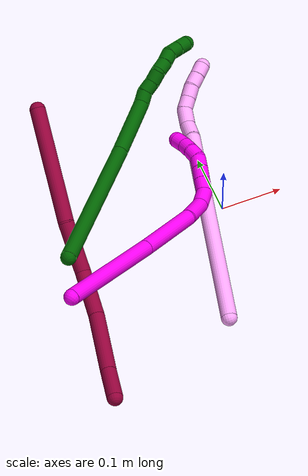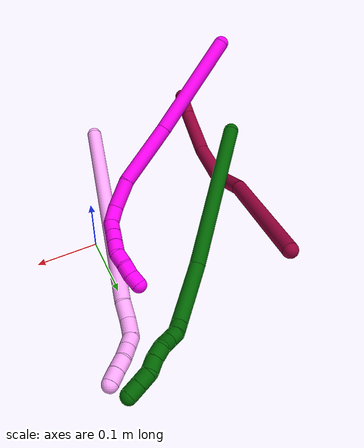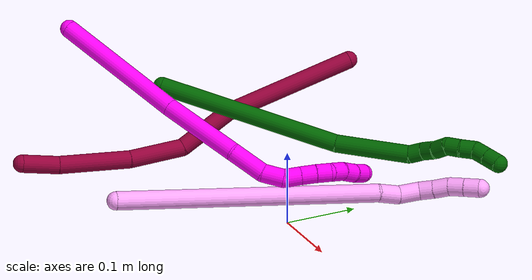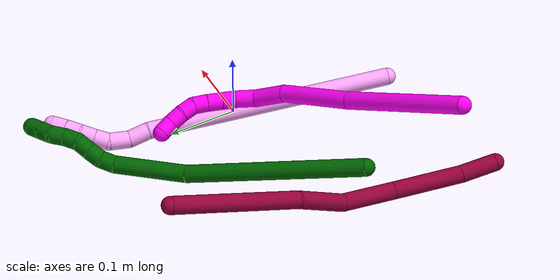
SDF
<sdf version="1.7">
 <world name="default">
  <model name="4">
   <static>0</static>
   <link name="4">
    <collision name="collision-cylinder-e_1_1_4">
     <pose>0.052653 0.169248 -0.011542 -1.63889 0.300949 -0.321818</pose>
     <geometry><cylinder><radius>0.0125</radius><length>0.355249</length></cylinder></geometry>
     <surface>
      <friction><ode><mu>1.16</mu><mu2>1.16</mu2><slip1>0</slip1><slip2>0</slip2></ode></friction>
      <contact><ode><kp>1e+06</kp><kd>1</kd><max_vel>0</max_vel><min_depth>0.001</min_depth></ode></contact>
     </surface>
    </collision>
    <visual name="visual-cylinder-e_1_1_4">
     <pose>0.052653 0.169248 -0.011542 -1.63889 0.300949 -0.321818</pose>
     <geometry><cylinder><radius>0.0125</radius><length>0.355249</length></cylinder></geometry>
     <material><ambient>1 0.65098 0.996078 1</ambient></material>
    </visual>
    <collision name="collision-cylinder-e_2_4_5">
     <pose>0.10769 0.353217 -0.021815 -1.4848 0.160053 -0.146899</pose>
     <geometry><cylinder><radius>0.0125</radius><length>0.029933</length></cylinder></geometry>
     <surface>
      <friction><ode><mu>1.16</mu><mu2>1.16</mu2><slip1>0</slip1><slip2>0</slip2></ode></friction>
      <contact><ode><kp>1e+06</kp><kd>1</kd><max_vel>0</max_vel><min_depth>0.001</min_depth></ode></contact>
     </surface>
    </collision>
    <visual name="visual-cylinder-e_2_4_5">
     <pose>0.10769 0.353217 -0.021815 -1.4848 0.160053 -0.146899</pose>
     <geometry><cylinder><radius>0.0125</radius><length>0.029933</length></cylinder></geometry>
     <material><ambient>1 0.65098 0.996078 1</ambient></material>
    </visual>
    <collision name="collision-cylinder-e_3_5_6">
     <pose>0.116663 0.381299 -0.021895 -1.67141 0.456039 -0.502476</pose>
     <geometry><cylinder><radius>0.0125</radius><length>0.029916</length></cylinder></geometry>
     <surface>
      <friction><ode><mu>1.16</mu><mu2>1.16</mu2><slip1>0</slip1><slip2>0</slip2></ode></friction>
      <contact><ode><kp>1e+06</kp><kd>1</kd><max_vel>0</max_vel><min_depth>0.001</min_depth></ode></contact>
     </surface>
    </collision>
    <visual name="visual-cylinder-e_3_5_6">
     <pose>0.116663 0.381299 -0.021895 -1.67141 0.456039 -0.502476</pose>
     <geometry><cylinder><radius>0.0125</radius><length>0.029916</length></cylinder></geometry>
     <material><ambient>1 0.65098 0.996078 1</ambient></material>
    </visual>
    <collision name="collision-cylinder-e_4_6_7">
     <pose>0.127396 0.40251 -0.028741 -2.18183 0.408271 -0.757148</pose>
     <geometry><cylinder><radius>0.0125</radius><length>0.020883</length></cylinder></geometry>
     <surface>
      <friction><ode><mu>1.16</mu><mu2>1.16</mu2><slip1>0</slip1><slip2>0</slip2></ode></friction>
      <contact><ode><kp>1e+06</kp><kd>1</kd><max_vel>0</max_vel><min_depth>0.001</min_depth></ode></contact>
     </surface>
    </collision>
    <visual name="visual-cylinder-e_4_6_7">
     <pose>0.127396 0.40251 -0.028741 -2.18183 0.408271 -0.757148</pose>
     <geometry><cylinder><radius>0.0125</radius><length>0.020883</length></cylinder></geometry>
     <material><ambient>1 0.65098 0.996078 1</ambient></material>
    </visual>
    <collision name="collision-cylinder-e_5_7_8">
     <pose>0.136346 0.417974 -0.039859 -2.20649 0.469754 -0.885191</pose>
     <geometry><cylinder><radius>0.0125</radius><length>0.021228</length></cylinder></geometry>
     <surface>
      <friction><ode><mu>1.16</mu><mu2>1.16</mu2><slip1>0</slip1><slip2>0</slip2></ode></friction>
      <contact><ode><kp>1e+06</kp><kd>1</kd><max_vel>0</max_vel><min_depth>0.001</min_depth></ode></contact>
     </surface>
    </collision>
    <visual name="visual-cylinder-e_5_7_8">
     <pose>0.136346 0.417974 -0.039859 -2.20649 0.469754 -0.885191</pose>
     <geometry><cylinder><radius>0.0125</radius><length>0.021228</length></cylinder></geometry>
     <material><ambient>1 0.65098 0.996078 1</ambient></material>
    </visual>
    <collision name="collision-cylinder-e_6_8_9">
     <pose>0.143799 0.433678 -0.052256 -2.26829 0.245926 -0.517743</pose>
     <geometry><cylinder><radius>0.0125</radius><length>0.02176</length></cylinder></geometry>
     <surface>
      <friction><ode><mu>1.16</mu><mu2>1.16</mu2><slip1>0</slip1><slip2>0</slip2></ode></friction>
      <contact><ode><kp>1e+06</kp><kd>1</kd><max_vel>0</max_vel><min_depth>0.001</min_depth></ode></contact>
     </surface>
    </collision>
    <visual name="visual-cylinder-e_6_8_9">
     <pose>0.143799 0.433678 -0.052256 -2.26829 0.245926 -0.517743</pose>
     <geometry><cylinder><radius>0.0125</radius><length>0.02176</length></cylinder></geometry>
     <material><ambient>1 0.65098 0.996078 1</ambient></material>
    </visual>
    <collision name="collision-cylinder-e_7_9_2">
     <pose>0.148923 0.449853 -0.065283 -2.22867 0.237603 -0.476909</pose>
     <geometry><cylinder><radius>0.0125</radius><length>0.021032</length></cylinder></geometry>
     <surface>
      <friction><ode><mu>1.16</mu><mu2>1.16</mu2><slip1>0</slip1><slip2>0</slip2></ode></friction>
      <contact><ode><kp>1e+06</kp><kd>1</kd><max_vel>0</max_vel><min_depth>0.001</min_depth></ode></contact>
     </surface>
    </collision>
    <visual name="visual-cylinder-e_7_9_2">
     <pose>0.148923 0.449853 -0.065283 -2.22867 0.237603 -0.476909</pose>
     <geometry><cylinder><radius>0.0125</radius><length>0.021032</length></cylinder></geometry>
     <material><ambient>1 0.65098 0.996078 1</ambient></material>
    </visual>
    <collision name="collision-sphere-2">
     <pose>0.151398 0.45794 -0.071532 0 -0 0</pose>
     <geometry><sphere><radius>0.0125</radius></sphere></geometry>
     <surface>
      <friction><ode><mu>1.16</mu><mu2>1.16</mu2><slip1>0</slip1><slip2>0</slip2></ode></friction>
      <contact><ode><kp>1e+06</kp><kd>1</kd><max_vel>0</max_vel><min_depth>0.001</min_depth></ode></contact>
     </surface>
    </collision>
    <visual name="visual-sphere-2">
     <pose>0.151398 0.45794 -0.071532 0 -0 0</pose>
     <geometry><sphere><radius>0.0125</radius></sphere></geometry>
     <material><ambient>1 0.65098 0.996078 1</ambient></material>
    </visual>
    <collision name="collision-sphere-9">
     <pose>0.146448 0.441765 -0.059034 0 -0 0</pose>
     <geometry><sphere><radius>0.0125</radius></sphere></geometry>
     <surface>
      <friction><ode><mu>1.16</mu><mu2>1.16</mu2><slip1>0</slip1><slip2>0</slip2></ode></friction>
      <contact><ode><kp>1e+06</kp><kd>1</kd><max_vel>0</max_vel><min_depth>0.001</min_depth></ode></contact>
     </surface>
    </collision>
    <visual name="visual-sphere-9">
     <pose>0.146448 0.441765 -0.059034 0 -0 0</pose>
     <geometry><sphere><radius>0.0125</radius></sphere></geometry>
     <material><ambient>1 0.65098 0.996078 1</ambient></material>
    </visual>
    <collision name="collision-sphere-4">
     <pose>0.105305 0.338496 -0.023084 0 -0 0</pose>
     <geometry><sphere><radius>0.0125</radius></sphere></geometry>
     <surface>
      <friction><ode><mu>1.16</mu><mu2>1.16</mu2><slip1>0</slip1><slip2>0</slip2></ode></friction>
      <contact><ode><kp>1e+06</kp><kd>1</kd><max_vel>0</max_vel><min_depth>0.001</min_depth></ode></contact>
     </surface>
    </collision>
    <visual name="visual-sphere-4">
     <pose>0.105305 0.338496 -0.023084 0 -0 0</pose>
     <geometry><sphere><radius>0.0125</radius></sphere></geometry>
     <material><ambient>1 0.65098 0.996078 1</ambient></material>
    </visual>
    <collision name="collision-sphere-1">
     <geometry><sphere><radius>0.0125</radius></sphere></geometry>
     <surface>
      <friction><ode><mu>1.16</mu><mu2>1.16</mu2><slip1>0</slip1><slip2>0</slip2></ode></friction>
      <contact><ode><kp>1e+06</kp><kd>1</kd><max_vel>0</max_vel><min_depth>0.001</min_depth></ode></contact>
     </surface>
    </collision>
    <visual name="visual-sphere-1">
     <geometry><sphere><radius>0.0125</radius></sphere></geometry>
     <material><ambient>1 0.65098 0.996078 1</ambient></material>
    </visual>
    <collision name="collision-sphere-8">
     <pose>0.14115 0.42559 -0.045478 0 -0 0</pose>
     <geometry><sphere><radius>0.0125</radius></sphere></geometry>
     <surface>
      <friction><ode><mu>1.16</mu><mu2>1.16</mu2><slip1>0</slip1><slip2>0</slip2></ode></friction>
      <contact><ode><kp>1e+06</kp><kd>1</kd><max_vel>0</max_vel><min_depth>0.001</min_depth></ode></contact>
     </surface>
    </collision>
    <visual name="visual-sphere-8">
     <pose>0.14115 0.42559 -0.045478 0 -0 0</pose>
     <geometry><sphere><radius>0.0125</radius></sphere></geometry>
     <material><ambient>1 0.65098 0.996078 1</ambient></material>
    </visual>
    <collision name="collision-sphere-5">
     <pose>0.110076 0.367938 -0.020546 0 -0 0</pose>
     <geometry><sphere><radius>0.0125</radius></sphere></geometry>
     <surface>
      <friction><ode><mu>1.16</mu><mu2>1.16</mu2><slip1>0</slip1><slip2>0</slip2></ode></friction>
      <contact><ode><kp>1e+06</kp><kd>1</kd><max_vel>0</max_vel><min_depth>0.001</min_depth></ode></contact>
     </surface>
    </collision>
    <visual name="visual-sphere-5">
     <pose>0.110076 0.367938 -0.020546 0 -0 0</pose>
     <geometry><sphere><radius>0.0125</radius></sphere></geometry>
     <material><ambient>1 0.65098 0.996078 1</ambient></material>
    </visual>
    <collision name="collision-sphere-6">
     <pose>0.12325 0.39466 -0.023243 0 -0 0</pose>
     <geometry><sphere><radius>0.0125</radius></sphere></geometry>
     <surface>
      <friction><ode><mu>1.16</mu><mu2>1.16</mu2><slip1>0</slip1><slip2>0</slip2></ode></friction>
      <contact><ode><kp>1e+06</kp><kd>1</kd><max_vel>0</max_vel><min_depth>0.001</min_depth></ode></contact>
     </surface>
    </collision>
    <visual name="visual-sphere-6">
     <pose>0.12325 0.39466 -0.023243 0 -0 0</pose>
     <geometry><sphere><radius>0.0125</radius></sphere></geometry>
     <material><ambient>1 0.65098 0.996078 1</ambient></material>
    </visual>
    <collision name="collision-sphere-7">
     <pose>0.131541 0.410359 -0.034239 0 -0 0</pose>
     <geometry><sphere><radius>0.0125</radius></sphere></geometry>
     <surface>
      <friction><ode><mu>1.16</mu><mu2>1.16</mu2><slip1>0</slip1><slip2>0</slip2></ode></friction>
      <contact><ode><kp>1e+06</kp><kd>1</kd><max_vel>0</max_vel><min_depth>0.001</min_depth></ode></contact>
     </surface>
    </collision>
    <visual name="visual-sphere-7">
     <pose>0.131541 0.410359 -0.034239 0 -0 0</pose>
     <geometry><sphere><radius>0.0125</radius></sphere></geometry>
     <material><ambient>1 0.65098 0.996078 1</ambient></material>
    </visual>
    <inertial>
     <pose>0.074468 0.236562 -0.018729 0 -0 0</pose>
     <mass>0.5</mass>
     <inertia>
      <ixx>0.002282</ixx>
      <ixy>0</ixy>
      <ixz>0</ixz>
      <iyy>-0.000995</iyy>
      <iyz>0</iyz>
      <izz>-0.004706</izz>
     </inertia>
    </inertial>
   </link>
   <pose>-0.078772 -0.210965 0.041357 -2.1831 -1.11063 1.97929</pose>
  </model>
  <model name="6">
   <static>0</static>
   <link name="6">
    <collision name="collision-cylinder-e_1_1_4">
     <pose>0.034801 0.072625 0.099701 -0.629553 0.27499 -0.090045</pose>
     <geometry><cylinder><radius>0.0125</radius><length>0.256326</length></cylinder></geometry>
     <surface>
      <friction><ode><mu>1.16</mu><mu2>1.16</mu2><slip1>0</slip1><slip2>0</slip2></ode></friction>
      <contact><ode><kp>1e+06</kp><kd>1</kd><max_vel>0</max_vel><min_depth>0.001</min_depth></ode></contact>
     </surface>
    </collision>
    <visual name="visual-cylinder-e_1_1_4">
     <pose>0.034801 0.072625 0.099701 -0.629553 0.27499 -0.090045</pose>
     <geometry><cylinder><radius>0.0125</radius><length>0.256326</length></cylinder></geometry>
     <material><ambient>0 0.392157 0.003922 1</ambient></material>
    </visual>
    <collision name="collision-cylinder-e_2_4_5">
     <pose>0.09307 0.170368 0.238132 -0.57535 0.470326 -0.141548</pose>
     <geometry><cylinder><radius>0.0125</radius><length>0.103571</length></cylinder></geometry>
     <surface>
      <friction><ode><mu>1.16</mu><mu2>1.16</mu2><slip1>0</slip1><slip2>0</slip2></ode></friction>
      <contact><ode><kp>1e+06</kp><kd>1</kd><max_vel>0</max_vel><min_depth>0.001</min_depth></ode></contact>
     </surface>
    </collision>
    <visual name="visual-cylinder-e_2_4_5">
     <pose>0.09307 0.170368 0.238132 -0.57535 0.470326 -0.141548</pose>
     <geometry><cylinder><radius>0.0125</radius><length>0.103571</length></cylinder></geometry>
     <material><ambient>0 0.392157 0.003922 1</ambient></material>
    </visual>
    <collision name="collision-cylinder-e_3_5_6">
     <pose>0.123676 0.197644 0.283567 -0.311321 0.792093 -0.13105</pose>
     <geometry><cylinder><radius>0.0125</radius><length>0.020055</length></cylinder></geometry>
     <surface>
      <friction><ode><mu>1.16</mu><mu2>1.16</mu2><slip1>0</slip1><slip2>0</slip2></ode></friction>
      <contact><ode><kp>1e+06</kp><kd>1</kd><max_vel>0</max_vel><min_depth>0.001</min_depth></ode></contact>
     </surface>
    </collision>
    <visual name="visual-cylinder-e_3_5_6">
     <pose>0.123676 0.197644 0.283567 -0.311321 0.792093 -0.13105</pose>
     <geometry><cylinder><radius>0.0125</radius><length>0.020055</length></cylinder></geometry>
     <material><ambient>0 0.392157 0.003922 1</ambient></material>
    </visual>
    <collision name="collision-cylinder-e_4_6_7">
     <pose>0.138867 0.204213 0.29424 -0.838117 0.935796 -0.442807</pose>
     <geometry><cylinder><radius>0.0125</radius><length>0.020008</length></cylinder></geometry>
     <surface>
      <friction><ode><mu>1.16</mu><mu2>1.16</mu2><slip1>0</slip1><slip2>0</slip2></ode></friction>
      <contact><ode><kp>1e+06</kp><kd>1</kd><max_vel>0</max_vel><min_depth>0.001</min_depth></ode></contact>
     </surface>
    </collision>
    <visual name="visual-cylinder-e_4_6_7">
     <pose>0.138867 0.204213 0.29424 -0.838117 0.935796 -0.442807</pose>
     <geometry><cylinder><radius>0.0125</radius><length>0.020008</length></cylinder></geometry>
     <material><ambient>0 0.392157 0.003922 1</ambient></material>
    </visual>
    <collision name="collision-cylinder-e_5_7_8">
     <pose>0.155693 0.211276 0.302251 -0.580701 1.06709 -0.349389</pose>
     <geometry><cylinder><radius>0.0125</radius><length>0.020032</length></cylinder></geometry>
     <surface>
      <friction><ode><mu>1.16</mu><mu2>1.16</mu2><slip1>0</slip1><slip2>0</slip2></ode></friction>
      <contact><ode><kp>1e+06</kp><kd>1</kd><max_vel>0</max_vel><min_depth>0.001</min_depth></ode></contact>
     </surface>
    </collision>
    <visual name="visual-cylinder-e_5_7_8">
     <pose>0.155693 0.211276 0.302251 -0.580701 1.06709 -0.349389</pose>
     <geometry><cylinder><radius>0.0125</radius><length>0.020032</length></cylinder></geometry>
     <material><ambient>0 0.392157 0.003922 1</ambient></material>
    </visual>
    <collision name="collision-cylinder-e_6_8_9">
     <pose>0.170179 0.219676 0.312155 -0.775516 0.608031 -0.254898</pose>
     <geometry><cylinder><radius>0.0125</radius><length>0.020004</length></cylinder></geometry>
     <surface>
      <friction><ode><mu>1.16</mu><mu2>1.16</mu2><slip1>0</slip1><slip2>0</slip2></ode></friction>
      <contact><ode><kp>1e+06</kp><kd>1</kd><max_vel>0</max_vel><min_depth>0.001</min_depth></ode></contact>
     </surface>
    </collision>
    <visual name="visual-cylinder-e_6_8_9">
     <pose>0.170179 0.219676 0.312155 -0.775516 0.608031 -0.254898</pose>
     <geometry><cylinder><radius>0.0125</radius><length>0.020004</length></cylinder></geometry>
     <material><ambient>0 0.392157 0.003922 1</ambient></material>
    </visual>
    <collision name="collision-cylinder-e_7_9_10">
     <pose>0.180863 0.230259 0.325223 -0.591082 0.520184 -0.161691</pose>
     <geometry><cylinder><radius>0.0125</radius><length>0.020002</length></cylinder></geometry>
     <surface>
      <friction><ode><mu>1.16</mu><mu2>1.16</mu2><slip1>0</slip1><slip2>0</slip2></ode></friction>
      <contact><ode><kp>1e+06</kp><kd>1</kd><max_vel>0</max_vel><min_depth>0.001</min_depth></ode></contact>
     </surface>
    </collision>
    <visual name="visual-cylinder-e_7_9_10">
     <pose>0.180863 0.230259 0.325223 -0.591082 0.520184 -0.161691</pose>
     <geometry><cylinder><radius>0.0125</radius><length>0.020002</length></cylinder></geometry>
     <material><ambient>0 0.392157 0.003922 1</ambient></material>
    </visual>
    <collision name="collision-cylinder-e_8_10_11">
     <pose>0.189904 0.243259 0.336529 -1.10538 0.419025 -0.260821</pose>
     <geometry><cylinder><radius>0.0125</radius><length>0.020002</length></cylinder></geometry>
     <surface>
      <friction><ode><mu>1.16</mu><mu2>1.16</mu2><slip1>0</slip1><slip2>0</slip2></ode></friction>
      <contact><ode><kp>1e+06</kp><kd>1</kd><max_vel>0</max_vel><min_depth>0.001</min_depth></ode></contact>
     </surface>
    </collision>
    <visual name="visual-cylinder-e_8_10_11">
     <pose>0.189904 0.243259 0.336529 -1.10538 0.419025 -0.260821</pose>
     <geometry><cylinder><radius>0.0125</radius><length>0.020002</length></cylinder></geometry>
     <material><ambient>0 0.392157 0.003922 1</ambient></material>
    </visual>
    <collision name="collision-cylinder-e_9_11_2">
     <pose>0.198051 0.259622 0.344649 -1.11498 0.420039 -0.264246</pose>
     <geometry><cylinder><radius>0.0125</radius><length>0.020001</length></cylinder></geometry>
     <surface>
      <friction><ode><mu>1.16</mu><mu2>1.16</mu2><slip1>0</slip1><slip2>0</slip2></ode></friction>
      <contact><ode><kp>1e+06</kp><kd>1</kd><max_vel>0</max_vel><min_depth>0.001</min_depth></ode></contact>
     </surface>
    </collision>
    <visual name="visual-cylinder-e_9_11_2">
     <pose>0.198051 0.259622 0.344649 -1.11498 0.420039 -0.264246</pose>
     <geometry><cylinder><radius>0.0125</radius><length>0.020001</length></cylinder></geometry>
     <material><ambient>0 0.392157 0.003922 1</ambient></material>
    </visual>
    <collision name="collision-sphere-2">
     <pose>0.202129 0.267821 0.348668 0 -0 0</pose>
     <geometry><sphere><radius>0.0125</radius></sphere></geometry>
     <surface>
      <friction><ode><mu>1.16</mu><mu2>1.16</mu2><slip1>0</slip1><slip2>0</slip2></ode></friction>
      <contact><ode><kp>1e+06</kp><kd>1</kd><max_vel>0</max_vel><min_depth>0.001</min_depth></ode></contact>
     </surface>
    </collision>
    <visual name="visual-sphere-2">
     <pose>0.202129 0.267821 0.348668 0 -0 0</pose>
     <geometry><sphere><radius>0.0125</radius></sphere></geometry>
     <material><ambient>0 0.392157 0.003922 1</ambient></material>
    </visual>
    <collision name="collision-sphere-11">
     <pose>0.193973 0.251423 0.340629 0 -0 0</pose>
     <geometry><sphere><radius>0.0125</radius></sphere></geometry>
     <surface>
      <friction><ode><mu>1.16</mu><mu2>1.16</mu2><slip1>0</slip1><slip2>0</slip2></ode></friction>
      <contact><ode><kp>1e+06</kp><kd>1</kd><max_vel>0</max_vel><min_depth>0.001</min_depth></ode></contact>
     </surface>
    </collision>
    <visual name="visual-sphere-11">
     <pose>0.193973 0.251423 0.340629 0 -0 0</pose>
     <geometry><sphere><radius>0.0125</radius></sphere></geometry>
     <material><ambient>0 0.392157 0.003922 1</ambient></material>
    </visual>
    <collision name="collision-sphere-10">
     <pose>0.185834 0.235095 0.332429 0 -0 0</pose>
     <geometry><sphere><radius>0.0125</radius></sphere></geometry>
     <surface>
      <friction><ode><mu>1.16</mu><mu2>1.16</mu2><slip1>0</slip1><slip2>0</slip2></ode></friction>
      <contact><ode><kp>1e+06</kp><kd>1</kd><max_vel>0</max_vel><min_depth>0.001</min_depth></ode></contact>
     </surface>
    </collision>
    <visual name="visual-sphere-10">
     <pose>0.185834 0.235095 0.332429 0 -0 0</pose>
     <geometry><sphere><radius>0.0125</radius></sphere></geometry>
     <material><ambient>0 0.392157 0.003922 1</ambient></material>
    </visual>
    <collision name="collision-sphere-9">
     <pose>0.175893 0.225423 0.318017 0 -0 0</pose>
     <geometry><sphere><radius>0.0125</radius></sphere></geometry>
     <surface>
      <friction><ode><mu>1.16</mu><mu2>1.16</mu2><slip1>0</slip1><slip2>0</slip2></ode></friction>
      <contact><ode><kp>1e+06</kp><kd>1</kd><max_vel>0</max_vel><min_depth>0.001</min_depth></ode></contact>
     </surface>
    </collision>
    <visual name="visual-sphere-9">
     <pose>0.175893 0.225423 0.318017 0 -0 0</pose>
     <geometry><sphere><radius>0.0125</radius></sphere></geometry>
     <material><ambient>0 0.392157 0.003922 1</ambient></material>
    </visual>
    <collision name="collision-sphere-4">
     <pose>0.069602 0.14525 0.199401 0 -0 0</pose>
     <geometry><sphere><radius>0.0125</radius></sphere></geometry>
     <surface>
      <friction><ode><mu>1.16</mu><mu2>1.16</mu2><slip1>0</slip1><slip2>0</slip2></ode></friction>
      <contact><ode><kp>1e+06</kp><kd>1</kd><max_vel>0</max_vel><min_depth>0.001</min_depth></ode></contact>
     </surface>
    </collision>
    <visual name="visual-sphere-4">
     <pose>0.069602 0.14525 0.199401 0 -0 0</pose>
     <geometry><sphere><radius>0.0125</radius></sphere></geometry>
     <material><ambient>0 0.392157 0.003922 1</ambient></material>
    </visual>
    <collision name="collision-sphere-1">
     <geometry><sphere><radius>0.0125</radius></sphere></geometry>
     <surface>
      <friction><ode><mu>1.16</mu><mu2>1.16</mu2><slip1>0</slip1><slip2>0</slip2></ode></friction>
      <contact><ode><kp>1e+06</kp><kd>1</kd><max_vel>0</max_vel><min_depth>0.001</min_depth></ode></contact>
     </surface>
    </collision>
    <visual name="visual-sphere-1">
     <geometry><sphere><radius>0.0125</radius></sphere></geometry>
     <material><ambient>0 0.392157 0.003922 1</ambient></material>
    </visual>
    <collision name="collision-sphere-8">
     <pose>0.164465 0.213929 0.306293 0 -0 0</pose>
     <geometry><sphere><radius>0.0125</radius></sphere></geometry>
     <surface>
      <friction><ode><mu>1.16</mu><mu2>1.16</mu2><slip1>0</slip1><slip2>0</slip2></ode></friction>
      <contact><ode><kp>1e+06</kp><kd>1</kd><max_vel>0</max_vel><min_depth>0.001</min_depth></ode></contact>
     </surface>
    </collision>
    <visual name="visual-sphere-8">
     <pose>0.164465 0.213929 0.306293 0 -0 0</pose>
     <geometry><sphere><radius>0.0125</radius></sphere></geometry>
     <material><ambient>0 0.392157 0.003922 1</ambient></material>
    </visual>
    <collision name="collision-sphere-5">
     <pose>0.116538 0.195487 0.276863 0 -0 0</pose>
     <geometry><sphere><radius>0.0125</radius></sphere></geometry>
     <surface>
      <friction><ode><mu>1.16</mu><mu2>1.16</mu2><slip1>0</slip1><slip2>0</slip2></ode></friction>
      <contact><ode><kp>1e+06</kp><kd>1</kd><max_vel>0</max_vel><min_depth>0.001</min_depth></ode></contact>
     </surface>
    </collision>
    <visual name="visual-sphere-5">
     <pose>0.116538 0.195487 0.276863 0 -0 0</pose>
     <geometry><sphere><radius>0.0125</radius></sphere></geometry>
     <material><ambient>0 0.392157 0.003922 1</ambient></material>
    </visual>
    <collision name="collision-sphere-6">
     <pose>0.130813 0.199801 0.290271 0 -0 0</pose>
     <geometry><sphere><radius>0.0125</radius></sphere></geometry>
     <surface>
      <friction><ode><mu>1.16</mu><mu2>1.16</mu2><slip1>0</slip1><slip2>0</slip2></ode></friction>
      <contact><ode><kp>1e+06</kp><kd>1</kd><max_vel>0</max_vel><min_depth>0.001</min_depth></ode></contact>
     </surface>
    </collision>
    <visual name="visual-sphere-6">
     <pose>0.130813 0.199801 0.290271 0 -0 0</pose>
     <geometry><sphere><radius>0.0125</radius></sphere></geometry>
     <material><ambient>0 0.392157 0.003922 1</ambient></material>
    </visual>
    <collision name="collision-sphere-7">
     <pose>0.146921 0.208624 0.298209 0 -0 0</pose>
     <geometry><sphere><radius>0.0125</radius></sphere></geometry>
     <surface>
      <friction><ode><mu>1.16</mu><mu2>1.16</mu2><slip1>0</slip1><slip2>0</slip2></ode></friction>
      <contact><ode><kp>1e+06</kp><kd>1</kd><max_vel>0</max_vel><min_depth>0.001</min_depth></ode></contact>
     </surface>
    </collision>
    <visual name="visual-sphere-7">
     <pose>0.146921 0.208624 0.298209 0 -0 0</pose>
     <geometry><sphere><radius>0.0125</radius></sphere></geometry>
     <material><ambient>0 0.392157 0.003922 1</ambient></material>
    </visual>
    <inertial>
     <pose>0.083438 0.135202 0.188444 0 -0 0</pose>
     <mass>0.5</mass>
     <inertia>
      <ixx>0.001327</ixx>
      <ixy>0</ixy>
      <ixz>0</ixz>
      <iyy>0.001134</iyy>
      <iyz>0</iyz>
      <izz>-0.00126</izz>
     </inertia>
    </inertial>
   </link>
   <pose>-0.278176 -0.056455 0.104722 -1.85913 -0.925997 0.233261</pose>
  </model>
  <model name="8">
   <static>0</static>
   <link name="8">
    <collision name="collision-cylinder-e_1_1_4">
     <pose>-0.000411 0.00018 -0.025692 -3.1346 -0.015995 2.317</pose>
     <geometry><cylinder><radius>0.0125</radius><length>0.051391</length></cylinder></geometry>
     <surface>
      <friction><ode><mu>1.16</mu><mu2>1.16</mu2><slip1>0</slip1><slip2>0</slip2></ode></friction>
      <contact><ode><kp>1e+06</kp><kd>1</kd><max_vel>0</max_vel><min_depth>0.001</min_depth></ode></contact>
     </surface>
    </collision>
    <visual name="visual-cylinder-e_1_1_4">
     <pose>-0.000411 0.00018 -0.025692 -3.1346 -0.015995 2.317</pose>
     <geometry><cylinder><radius>0.0125</radius><length>0.051391</length></cylinder></geometry>
     <material><ambient>0.584314 0 0.227451 1</ambient></material>
    </visual>
    <collision name="collision-cylinder-e_2_4_5">
     <pose>0.003236 0.005222 -0.101298 -3.04448 0.080744 -1.38698</pose>
     <geometry><cylinder><radius>0.0125</radius><length>0.100629</length></cylinder></geometry>
     <surface>
      <friction><ode><mu>1.16</mu><mu2>1.16</mu2><slip1>0</slip1><slip2>0</slip2></ode></friction>
      <contact><ode><kp>1e+06</kp><kd>1</kd><max_vel>0</max_vel><min_depth>0.001</min_depth></ode></contact>
     </surface>
    </collision>
    <visual name="visual-cylinder-e_2_4_5">
     <pose>0.003236 0.005222 -0.101298 -3.04448 0.080744 -1.38698</pose>
     <geometry><cylinder><radius>0.0125</radius><length>0.100629</length></cylinder></geometry>
     <material><ambient>0.584314 0 0.227451 1</ambient></material>
    </visual>
    <collision name="collision-cylinder-e_3_5_6">
     <pose>0.01071 0.019325 -0.188705 -2.89995 0.08823 -0.697455</pose>
     <geometry><cylinder><radius>0.0125</radius><length>0.077533</length></cylinder></geometry>
     <surface>
      <friction><ode><mu>1.16</mu><mu2>1.16</mu2><slip1>0</slip1><slip2>0</slip2></ode></friction>
      <contact><ode><kp>1e+06</kp><kd>1</kd><max_vel>0</max_vel><min_depth>0.001</min_depth></ode></contact>
     </surface>
    </collision>
    <visual name="visual-cylinder-e_3_5_6">
     <pose>0.01071 0.019325 -0.188705 -2.89995 0.08823 -0.697455</pose>
     <geometry><cylinder><radius>0.0125</radius><length>0.077533</length></cylinder></geometry>
     <material><ambient>0.584314 0 0.227451 1</ambient></material>
    </visual>
    <collision name="collision-cylinder-e_4_6_7">
     <pose>0.026302 0.051832 -0.257443 -2.50152 0.302935 -0.863172</pose>
     <geometry><cylinder><radius>0.0125</radius><length>0.081627</length></cylinder></geometry>
     <surface>
      <friction><ode><mu>1.16</mu><mu2>1.16</mu2><slip1>0</slip1><slip2>0</slip2></ode></friction>
      <contact><ode><kp>1e+06</kp><kd>1</kd><max_vel>0</max_vel><min_depth>0.001</min_depth></ode></contact>
     </surface>
    </collision>
    <visual name="visual-cylinder-e_4_6_7">
     <pose>0.026302 0.051832 -0.257443 -2.50152 0.302935 -0.863172</pose>
     <geometry><cylinder><radius>0.0125</radius><length>0.081627</length></cylinder></geometry>
     <material><ambient>0.584314 0 0.227451 1</ambient></material>
    </visual>
    <collision name="collision-cylinder-e_5_7_2">
     <pose>0.061907 0.11008 -0.373189 -2.74909 0.250789 -1.13017</pose>
     <geometry><cylinder><radius>0.0125</radius><length>0.18882</length></cylinder></geometry>
     <surface>
      <friction><ode><mu>1.16</mu><mu2>1.16</mu2><slip1>0</slip1><slip2>0</slip2></ode></friction>
      <contact><ode><kp>1e+06</kp><kd>1</kd><max_vel>0</max_vel><min_depth>0.001</min_depth></ode></contact>
     </surface>
    </collision>
    <visual name="visual-cylinder-e_5_7_2">
     <pose>0.061907 0.11008 -0.373189 -2.74909 0.250789 -1.13017</pose>
     <geometry><cylinder><radius>0.0125</radius><length>0.18882</length></cylinder></geometry>
     <material><ambient>0.584314 0 0.227451 1</ambient></material>
    </visual>
    <collision name="collision-sphere-2">
     <pose>0.085337 0.145062 -0.457691 0 -0 0</pose>
     <geometry><sphere><radius>0.0125</radius></sphere></geometry>
     <surface>
      <friction><ode><mu>1.16</mu><mu2>1.16</mu2><slip1>0</slip1><slip2>0</slip2></ode></friction>
      <contact><ode><kp>1e+06</kp><kd>1</kd><max_vel>0</max_vel><min_depth>0.001</min_depth></ode></contact>
     </surface>
    </collision>
    <visual name="visual-sphere-2">
     <pose>0.085337 0.145062 -0.457691 0 -0 0</pose>
     <geometry><sphere><radius>0.0125</radius></sphere></geometry>
     <material><ambient>0.584314 0 0.227451 1</ambient></material>
    </visual>
    <collision name="collision-sphere-7">
     <pose>0.038478 0.075098 -0.288687 0 -0 0</pose>
     <geometry><sphere><radius>0.0125</radius></sphere></geometry>
     <surface>
      <friction><ode><mu>1.16</mu><mu2>1.16</mu2><slip1>0</slip1><slip2>0</slip2></ode></friction>
      <contact><ode><kp>1e+06</kp><kd>1</kd><max_vel>0</max_vel><min_depth>0.001</min_depth></ode></contact>
     </surface>
    </collision>
    <visual name="visual-sphere-7">
     <pose>0.038478 0.075098 -0.288687 0 -0 0</pose>
     <geometry><sphere><radius>0.0125</radius></sphere></geometry>
     <material><ambient>0.584314 0 0.227451 1</ambient></material>
    </visual>
    <collision name="collision-sphere-6">
     <pose>0.014126 0.028566 -0.226199 0 -0 0</pose>
     <geometry><sphere><radius>0.0125</radius></sphere></geometry>
     <surface>
      <friction><ode><mu>1.16</mu><mu2>1.16</mu2><slip1>0</slip1><slip2>0</slip2></ode></friction>
      <contact><ode><kp>1e+06</kp><kd>1</kd><max_vel>0</max_vel><min_depth>0.001</min_depth></ode></contact>
     </surface>
    </collision>
    <visual name="visual-sphere-6">
     <pose>0.014126 0.028566 -0.226199 0 -0 0</pose>
     <geometry><sphere><radius>0.0125</radius></sphere></geometry>
     <material><ambient>0.584314 0 0.227451 1</ambient></material>
    </visual>
    <collision name="collision-sphere-5">
     <pose>0.007294 0.010085 -0.151212 0 -0 0</pose>
     <geometry><sphere><radius>0.0125</radius></sphere></geometry>
     <surface>
      <friction><ode><mu>1.16</mu><mu2>1.16</mu2><slip1>0</slip1><slip2>0</slip2></ode></friction>
      <contact><ode><kp>1e+06</kp><kd>1</kd><max_vel>0</max_vel><min_depth>0.001</min_depth></ode></contact>
     </surface>
    </collision>
    <visual name="visual-sphere-5">
     <pose>0.007294 0.010085 -0.151212 0 -0 0</pose>
     <geometry><sphere><radius>0.0125</radius></sphere></geometry>
     <material><ambient>0.584314 0 0.227451 1</ambient></material>
    </visual>
    <collision name="collision-sphere-1">
     <geometry><sphere><radius>0.0125</radius></sphere></geometry>
     <surface>
      <friction><ode><mu>1.16</mu><mu2>1.16</mu2><slip1>0</slip1><slip2>0</slip2></ode></friction>
      <contact><ode><kp>1e+06</kp><kd>1</kd><max_vel>0</max_vel><min_depth>0.001</min_depth></ode></contact>
     </surface>
    </collision>
    <visual name="visual-sphere-1">
     <geometry><sphere><radius>0.0125</radius></sphere></geometry>
     <material><ambient>0.584314 0 0.227451 1</ambient></material>
    </visual>
    <collision name="collision-sphere-4">
     <pose>-0.000822 0.000359 -0.051383 0 -0 0</pose>
     <geometry><sphere><radius>0.0125</radius></sphere></geometry>
     <surface>
      <friction><ode><mu>1.16</mu><mu2>1.16</mu2><slip1>0</slip1><slip2>0</slip2></ode></friction>
      <contact><ode><kp>1e+06</kp><kd>1</kd><max_vel>0</max_vel><min_depth>0.001</min_depth></ode></contact>
     </surface>
    </collision>
    <visual name="visual-sphere-4">
     <pose>-0.000822 0.000359 -0.051383 0 -0 0</pose>
     <geometry><sphere><radius>0.0125</radius></sphere></geometry>
     <material><ambient>0.584314 0 0.227451 1</ambient></material>
    </visual>
    <inertial>
     <pose>0.029942 0.054099 -0.235249 0 -0 0</pose>
     <mass>0.5</mass>
     <inertia>
      <ixx>-0.000327</ixx>
      <ixy>0</ixy>
      <ixz>0</ixz>
      <iyy>-0.000857</iyy>
      <iyz>0</iyz>
      <izz>-0.000459</izz>
     </inertia>
    </inertial>
   </link>
   <pose>-0.286218 -0.264663 0.022935 1.36514 -0.737559 -0.059361</pose>
  </model>
  <model name="10">
   <static>0</static>
   <link name="10">
    <collision name="collision-cylinder-e_1_1_4">
     <pose>0.051839 0.014767 0.076556 -0.190558 0.586765 -0.057726</pose>
     <geometry><cylinder><radius>0.0125</radius><length>0.187255</length></cylinder></geometry>
     <surface>
      <friction><ode><mu>1.16</mu><mu2>1.16</mu2><slip1>0</slip1><slip2>0</slip2></ode></friction>
      <contact><ode><kp>1e+06</kp><kd>1</kd><max_vel>0</max_vel><min_depth>0.001</min_depth></ode></contact>
     </surface>
    </collision>
    <visual name="visual-cylinder-e_1_1_4">
     <pose>0.051839 0.014767 0.076556 -0.190558 0.586765 -0.057726</pose>
     <geometry><cylinder><radius>0.0125</radius><length>0.187255</length></cylinder></geometry>
     <material><ambient>1 0 0.964706 1</ambient></material>
    </visual>
    <collision name="collision-cylinder-e_2_4_5">
     <pose>0.13203 0.036551 0.200326 -0.147515 0.535985 -0.040575</pose>
     <geometry><cylinder><radius>0.0125</radius><length>0.111037</length></cylinder></geometry>
     <surface>
      <friction><ode><mu>1.16</mu><mu2>1.16</mu2><slip1>0</slip1><slip2>0</slip2></ode></friction>
      <contact><ode><kp>1e+06</kp><kd>1</kd><max_vel>0</max_vel><min_depth>0.001</min_depth></ode></contact>
     </surface>
    </collision>
    <visual name="visual-cylinder-e_2_4_5">
     <pose>0.13203 0.036551 0.200326 -0.147515 0.535985 -0.040575</pose>
     <geometry><cylinder><radius>0.0125</radius><length>0.111037</length></cylinder></geometry>
     <material><ambient>1 0 0.964706 1</ambient></material>
    </visual>
    <collision name="collision-cylinder-e_3_5_6">
     <pose>0.173096 0.052029 0.266429 -0.421199 0.550832 -0.120675</pose>
     <geometry><cylinder><radius>0.0125</radius><length>0.04858</length></cylinder></geometry>
     <surface>
      <friction><ode><mu>1.16</mu><mu2>1.16</mu2><slip1>0</slip1><slip2>0</slip2></ode></friction>
      <contact><ode><kp>1e+06</kp><kd>1</kd><max_vel>0</max_vel><min_depth>0.001</min_depth></ode></contact>
     </surface>
    </collision>
    <visual name="visual-cylinder-e_3_5_6">
     <pose>0.173096 0.052029 0.266429 -0.421199 0.550832 -0.120675</pose>
     <geometry><cylinder><radius>0.0125</radius><length>0.04858</length></cylinder></geometry>
     <material><ambient>1 0 0.964706 1</ambient></material>
    </visual>
    <collision name="collision-cylinder-e_4_6_7">
     <pose>0.188598 0.066677 0.298336 -0.443593 0.191119 -0.043223</pose>
     <geometry><cylinder><radius>0.0125</radius><length>0.029363</length></cylinder></geometry>
     <surface>
      <friction><ode><mu>1.16</mu><mu2>1.16</mu2><slip1>0</slip1><slip2>0</slip2></ode></friction>
      <contact><ode><kp>1e+06</kp><kd>1</kd><max_vel>0</max_vel><min_depth>0.001</min_depth></ode></contact>
     </surface>
    </collision>
    <visual name="visual-cylinder-e_4_6_7">
     <pose>0.188598 0.066677 0.298336 -0.443593 0.191119 -0.043223</pose>
     <geometry><cylinder><radius>0.0125</radius><length>0.029363</length></cylinder></geometry>
     <material><ambient>1 0 0.964706 1</ambient></material>
    </visual>
    <collision name="collision-cylinder-e_5_7_8">
     <pose>0.188776 0.079661 0.319675 -0.685043 -0.238403 0.085362</pose>
     <geometry><cylinder><radius>0.0125</radius><length>0.022114</length></cylinder></geometry>
     <surface>
      <friction><ode><mu>1.16</mu><mu2>1.16</mu2><slip1>0</slip1><slip2>0</slip2></ode></friction>
      <contact><ode><kp>1e+06</kp><kd>1</kd><max_vel>0</max_vel><min_depth>0.001</min_depth></ode></contact>
     </surface>
    </collision>
    <visual name="visual-cylinder-e_5_7_8">
     <pose>0.188776 0.079661 0.319675 -0.685043 -0.238403 0.085362</pose>
     <geometry><cylinder><radius>0.0125</radius><length>0.022114</length></cylinder></geometry>
     <material><ambient>1 0 0.964706 1</ambient></material>
    </visual>
    <collision name="collision-cylinder-e_6_8_9">
     <pose>0.183924 0.092832 0.336021 -0.671086 -0.215217 0.075308</pose>
     <geometry><cylinder><radius>0.0125</radius><length>0.02098</length></cylinder></geometry>
     <surface>
      <friction><ode><mu>1.16</mu><mu2>1.16</mu2><slip1>0</slip1><slip2>0</slip2></ode></friction>
      <contact><ode><kp>1e+06</kp><kd>1</kd><max_vel>0</max_vel><min_depth>0.001</min_depth></ode></contact>
     </surface>
    </collision>
    <visual name="visual-cylinder-e_6_8_9">
     <pose>0.183924 0.092832 0.336021 -0.671086 -0.215217 0.075308</pose>
     <geometry><cylinder><radius>0.0125</radius><length>0.02098</length></cylinder></geometry>
     <material><ambient>1 0 0.964706 1</ambient></material>
    </visual>
    <collision name="collision-cylinder-e_7_9_10">
     <pose>0.179987 0.105712 0.35151 -0.717099 -0.169769 0.063752</pose>
     <geometry><cylinder><radius>0.0125</radius><length>0.020091</length></cylinder></geometry>
     <surface>
      <friction><ode><mu>1.16</mu><mu2>1.16</mu2><slip1>0</slip1><slip2>0</slip2></ode></friction>
      <contact><ode><kp>1e+06</kp><kd>1</kd><max_vel>0</max_vel><min_depth>0.001</min_depth></ode></contact>
     </surface>
    </collision>
    <visual name="visual-cylinder-e_7_9_10">
     <pose>0.179987 0.105712 0.35151 -0.717099 -0.169769 0.063752</pose>
     <geometry><cylinder><radius>0.0125</radius><length>0.020091</length></cylinder></geometry>
     <material><ambient>1 0 0.964706 1</ambient></material>
    </visual>
    <collision name="collision-cylinder-e_8_10_11">
     <pose>0.176593 0.121524 0.363018 -1.16071 -0.165695 0.108784</pose>
     <geometry><cylinder><radius>0.0125</radius><length>0.020574</length></cylinder></geometry>
     <surface>
      <friction><ode><mu>1.16</mu><mu2>1.16</mu2><slip1>0</slip1><slip2>0</slip2></ode></friction>
      <contact><ode><kp>1e+06</kp><kd>1</kd><max_vel>0</max_vel><min_depth>0.001</min_depth></ode></contact>
     </surface>
    </collision>
    <visual name="visual-cylinder-e_8_10_11">
     <pose>0.176593 0.121524 0.363018 -1.16071 -0.165695 0.108784</pose>
     <geometry><cylinder><radius>0.0125</radius><length>0.020574</length></cylinder></geometry>
     <material><ambient>1 0 0.964706 1</ambient></material>
    </visual>
    <collision name="collision-cylinder-e_9_11_12">
     <pose>0.175122 0.140182 0.370595 -1.20969 0.02256 -0.015595</pose>
     <geometry><cylinder><radius>0.0125</radius><length>0.02</length></cylinder></geometry>
     <surface>
      <friction><ode><mu>1.16</mu><mu2>1.16</mu2><slip1>0</slip1><slip2>0</slip2></ode></friction>
      <contact><ode><kp>1e+06</kp><kd>1</kd><max_vel>0</max_vel><min_depth>0.001</min_depth></ode></contact>
     </surface>
    </collision>
    <visual name="visual-cylinder-e_9_11_12">
     <pose>0.175122 0.140182 0.370595 -1.20969 0.02256 -0.015595</pose>
     <geometry><cylinder><radius>0.0125</radius><length>0.02</length></cylinder></geometry>
     <material><ambient>1 0 0.964706 1</ambient></material>
    </visual>
    <collision name="collision-cylinder-e_10_12_2">
     <pose>0.174483 0.159238 0.376396 -1.34114 -0.086499 0.068625</pose>
     <geometry><cylinder><radius>0.0125</radius><length>0.020005</length></cylinder></geometry>
     <surface>
      <friction><ode><mu>1.16</mu><mu2>1.16</mu2><slip1>0</slip1><slip2>0</slip2></ode></friction>
      <contact><ode><kp>1e+06</kp><kd>1</kd><max_vel>0</max_vel><min_depth>0.001</min_depth></ode></contact>
     </surface>
    </collision>
    <visual name="visual-cylinder-e_10_12_2">
     <pose>0.174483 0.159238 0.376396 -1.34114 -0.086499 0.068625</pose>
     <geometry><cylinder><radius>0.0125</radius><length>0.020005</length></cylinder></geometry>
     <material><ambient>1 0 0.964706 1</ambient></material>
    </visual>
    <collision name="collision-sphere-2">
     <pose>0.173619 0.168942 0.378664 0 -0 0</pose>
     <geometry><sphere><radius>0.0125</radius></sphere></geometry>
     <surface>
      <friction><ode><mu>1.16</mu><mu2>1.16</mu2><slip1>0</slip1><slip2>0</slip2></ode></friction>
      <contact><ode><kp>1e+06</kp><kd>1</kd><max_vel>0</max_vel><min_depth>0.001</min_depth></ode></contact>
     </surface>
    </collision>
    <visual name="visual-sphere-2">
     <pose>0.173619 0.168942 0.378664 0 -0 0</pose>
     <geometry><sphere><radius>0.0125</radius></sphere></geometry>
     <material><ambient>1 0 0.964706 1</ambient></material>
    </visual>
    <collision name="collision-sphere-12">
     <pose>0.175347 0.149534 0.374127 0 -0 0</pose>
     <geometry><sphere><radius>0.0125</radius></sphere></geometry>
     <surface>
      <friction><ode><mu>1.16</mu><mu2>1.16</mu2><slip1>0</slip1><slip2>0</slip2></ode></friction>
      <contact><ode><kp>1e+06</kp><kd>1</kd><max_vel>0</max_vel><min_depth>0.001</min_depth></ode></contact>
     </surface>
    </collision>
    <visual name="visual-sphere-12">
     <pose>0.175347 0.149534 0.374127 0 -0 0</pose>
     <geometry><sphere><radius>0.0125</radius></sphere></geometry>
     <material><ambient>1 0 0.964706 1</ambient></material>
    </visual>
    <collision name="collision-sphere-11">
     <pose>0.174896 0.130829 0.367063 0 -0 0</pose>
     <geometry><sphere><radius>0.0125</radius></sphere></geometry>
     <surface>
      <friction><ode><mu>1.16</mu><mu2>1.16</mu2><slip1>0</slip1><slip2>0</slip2></ode></friction>
      <contact><ode><kp>1e+06</kp><kd>1</kd><max_vel>0</max_vel><min_depth>0.001</min_depth></ode></contact>
     </surface>
    </collision>
    <visual name="visual-sphere-11">
     <pose>0.174896 0.130829 0.367063 0 -0 0</pose>
     <geometry><sphere><radius>0.0125</radius></sphere></geometry>
     <material><ambient>1 0 0.964706 1</ambient></material>
    </visual>
    <collision name="collision-sphere-10">
     <pose>0.17829 0.112219 0.358972 0 -0 0</pose>
     <geometry><sphere><radius>0.0125</radius></sphere></geometry>
     <surface>
      <friction><ode><mu>1.16</mu><mu2>1.16</mu2><slip1>0</slip1><slip2>0</slip2></ode></friction>
      <contact><ode><kp>1e+06</kp><kd>1</kd><max_vel>0</max_vel><min_depth>0.001</min_depth></ode></contact>
     </surface>
    </collision>
    <visual name="visual-sphere-10">
     <pose>0.17829 0.112219 0.358972 0 -0 0</pose>
     <geometry><sphere><radius>0.0125</radius></sphere></geometry>
     <material><ambient>1 0 0.964706 1</ambient></material>
    </visual>
    <collision name="collision-sphere-9">
     <pose>0.181684 0.099205 0.344047 0 -0 0</pose>
     <geometry><sphere><radius>0.0125</radius></sphere></geometry>
     <surface>
      <friction><ode><mu>1.16</mu><mu2>1.16</mu2><slip1>0</slip1><slip2>0</slip2></ode></friction>
      <contact><ode><kp>1e+06</kp><kd>1</kd><max_vel>0</max_vel><min_depth>0.001</min_depth></ode></contact>
     </surface>
    </collision>
    <visual name="visual-sphere-9">
     <pose>0.181684 0.099205 0.344047 0 -0 0</pose>
     <geometry><sphere><radius>0.0125</radius></sphere></geometry>
     <material><ambient>1 0 0.964706 1</ambient></material>
    </visual>
    <collision name="collision-sphere-4">
     <pose>0.103678 0.029535 0.153112 0 -0 0</pose>
     <geometry><sphere><radius>0.0125</radius></sphere></geometry>
     <surface>
      <friction><ode><mu>1.16</mu><mu2>1.16</mu2><slip1>0</slip1><slip2>0</slip2></ode></friction>
      <contact><ode><kp>1e+06</kp><kd>1</kd><max_vel>0</max_vel><min_depth>0.001</min_depth></ode></contact>
     </surface>
    </collision>
    <visual name="visual-sphere-4">
     <pose>0.103678 0.029535 0.153112 0 -0 0</pose>
     <geometry><sphere><radius>0.0125</radius></sphere></geometry>
     <material><ambient>1 0 0.964706 1</ambient></material>
    </visual>
    <collision name="collision-sphere-1">
     <geometry><sphere><radius>0.0125</radius></sphere></geometry>
     <surface>
      <friction><ode><mu>1.16</mu><mu2>1.16</mu2><slip1>0</slip1><slip2>0</slip2></ode></friction>
      <contact><ode><kp>1e+06</kp><kd>1</kd><max_vel>0</max_vel><min_depth>0.001</min_depth></ode></contact>
     </surface>
    </collision>
    <visual name="visual-sphere-1">
     <geometry><sphere><radius>0.0125</radius></sphere></geometry>
     <material><ambient>1 0 0.964706 1</ambient></material>
    </visual>
    <collision name="collision-sphere-8">
     <pose>0.186165 0.08646 0.327995 0 -0 0</pose>
     <geometry><sphere><radius>0.0125</radius></sphere></geometry>
     <surface>
      <friction><ode><mu>1.16</mu><mu2>1.16</mu2><slip1>0</slip1><slip2>0</slip2></ode></friction>
      <contact><ode><kp>1e+06</kp><kd>1</kd><max_vel>0</max_vel><min_depth>0.001</min_depth></ode></contact>
     </surface>
    </collision>
    <visual name="visual-sphere-8">
     <pose>0.186165 0.08646 0.327995 0 -0 0</pose>
     <geometry><sphere><radius>0.0125</radius></sphere></geometry>
     <material><ambient>1 0 0.964706 1</ambient></material>
    </visual>
    <collision name="collision-sphere-5">
     <pose>0.160383 0.043567 0.24754 0 -0 0</pose>
     <geometry><sphere><radius>0.0125</radius></sphere></geometry>
     <surface>
      <friction><ode><mu>1.16</mu><mu2>1.16</mu2><slip1>0</slip1><slip2>0</slip2></ode></friction>
      <contact><ode><kp>1e+06</kp><kd>1</kd><max_vel>0</max_vel><min_depth>0.001</min_depth></ode></contact>
     </surface>
    </collision>
    <visual name="visual-sphere-5">
     <pose>0.160383 0.043567 0.24754 0 -0 0</pose>
     <geometry><sphere><radius>0.0125</radius></sphere></geometry>
     <material><ambient>1 0 0.964706 1</ambient></material>
    </visual>
    <collision name="collision-sphere-6">
     <pose>0.185809 0.060491 0.285317 0 -0 0</pose>
     <geometry><sphere><radius>0.0125</radius></sphere></geometry>
     <surface>
      <friction><ode><mu>1.16</mu><mu2>1.16</mu2><slip1>0</slip1><slip2>0</slip2></ode></friction>
      <contact><ode><kp>1e+06</kp><kd>1</kd><max_vel>0</max_vel><min_depth>0.001</min_depth></ode></contact>
     </surface>
    </collision>
    <visual name="visual-sphere-6">
     <pose>0.185809 0.060491 0.285317 0 -0 0</pose>
     <geometry><sphere><radius>0.0125</radius></sphere></geometry>
     <material><ambient>1 0 0.964706 1</ambient></material>
    </visual>
    <collision name="collision-sphere-7">
     <pose>0.191387 0.072863 0.311355 0 -0 0</pose>
     <geometry><sphere><radius>0.0125</radius></sphere></geometry>
     <surface>
      <friction><ode><mu>1.16</mu><mu2>1.16</mu2><slip1>0</slip1><slip2>0</slip2></ode></friction>
      <contact><ode><kp>1e+06</kp><kd>1</kd><max_vel>0</max_vel><min_depth>0.001</min_depth></ode></contact>
     </surface>
    </collision>
    <visual name="visual-sphere-7">
     <pose>0.191387 0.072863 0.311355 0 -0 0</pose>
     <geometry><sphere><radius>0.0125</radius></sphere></geometry>
     <material><ambient>1 0 0.964706 1</ambient></material>
    </visual>
    <inertial>
     <pose>0.12118 0.051264 0.203748 0 -0 0</pose>
     <mass>0.5</mass>
     <inertia>
      <ixx>0.000567</ixx>
      <ixy>0</ixy>
      <ixz>0</ixz>
      <iyy>0.000665</iyy>
      <iyz>0</iyz>
      <izz>-0.000458</izz>
     </inertia>
    </inertial>
   </link>
   <pose>-0.315717 -0.177259 0.196454 -1.18512 1.07931 -0.596041</pose>
  </model>
 </world>
</sdf>
